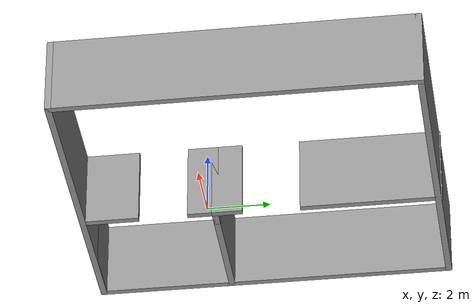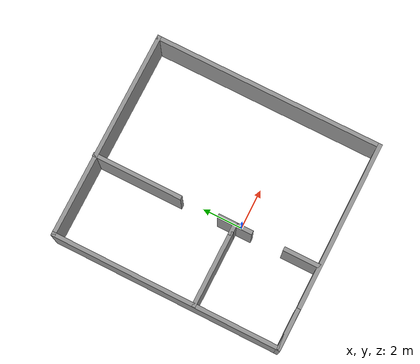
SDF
<?xml version='1.0'?>
<sdf version='1.4'>
  <model name='bedroom'>
    <link name='Wall_10'>
      <collision name='Wall_10_Collision'>
        <geometry>
          <box>
            <size>3.79938 0.2 2.5</size>
          </box>
        </geometry>
        <pose>0 0 1.25 0 -0 0</pose>
      </collision>
      <visual name='Wall_10_Visual'>
        <pose>0 0 1.25 0 -0 0</pose>
        <geometry>
          <box>
            <size>3.79938 0.2 2.5</size>
          </box>
        </geometry>
        <material>
          <script>
            <uri>file://media/materials/scripts/gazebo.material</uri>
            <name>Gazebo/Grey</name>
          </script>
        </material>
      </visual>
      <velocity_decay>
        <linear>0</linear>
        <angular>0</angular>
      </velocity_decay>
      <pose>-2.57757 0.196032 0 0 -0 0</pose>
    </link>
    <link name='Wall_11'>
      <collision name='Wall_11_Collision'>
        <geometry>
          <box>
            <size>0.661459 0.2 2.5</size>
          </box>
        </geometry>
        <pose>0 0 1.25 0 -0 0</pose>
      </collision>
      <visual name='Wall_11_Visual'>
        <pose>0 0 1.25 0 -0 0</pose>
        <geometry>
          <box>
            <size>0.661459 0.2 2.5</size>
          </box>
        </geometry>
        <material>
          <script>
            <uri>file://media/materials/scripts/gazebo.material</uri>
            <name>Gazebo/Grey</name>
          </script>
        </material>
      </visual>
      <velocity_decay>
        <linear>0</linear>
        <angular>0</angular>
      </velocity_decay>
      <pose>-0.547146 0.196032 0 0 -0 0</pose>
    </link>
    <link name='Wall_12'>
      <collision name='Wall_12_Collision'>
        <geometry>
          <box>
            <size>0.969098 0.2 2.5</size>
          </box>
        </geometry>
        <pose>0 0 1.25 0 -0 0</pose>
      </collision>
      <visual name='Wall_12_Visual'>
        <pose>0 0 1.25 0 -0 0</pose>
        <geometry>
          <box>
            <size>0.969098 0.2 2.5</size>
          </box>
        </geometry>
        <material>
          <script>
            <uri>file://media/materials/scripts/gazebo.material</uri>
            <name>Gazebo/Grey</name>
          </script>
        </material>
      </visual>
      <velocity_decay>
        <linear>0</linear>
        <angular>0</angular>
      </velocity_decay>
      <pose>-0.316416 -0.188517 0 0 0 -1.5708</pose>
    </link>
    <link name='Wall_14'>
      <collision name='Wall_14_Collision'>
        <geometry>
          <box>
            <size>1.89202 0.2 2.5</size>
          </box>
        </geometry>
        <pose>0 0 1.25 0 -0 0</pose>
      </collision>
      <visual name='Wall_14_Visual'>
        <pose>0 0 1.25 0 -0 0</pose>
        <geometry>
          <box>
            <size>1.89202 0.2 2.5</size>
          </box>
        </geometry>
        <material>
          <script>
            <uri>file://media/materials/scripts/gazebo.material</uri>
            <name>Gazebo/Grey</name>
          </script>
        </material>
      </visual>
      <velocity_decay>
        <linear>0</linear>
        <angular>0</angular>
      </velocity_decay>
      <pose>-0.316416 -3.17262 0 0 0 -1.5708</pose>
    </link>
    <link name='Wall_16'>
      <collision name='Wall_16_Collision'>
        <geometry>
          <box>
            <size>0.969098 0.2 2.5</size>
          </box>
        </geometry>
        <pose>0 0 1.25 0 -0 0</pose>
      </collision>
      <visual name='Wall_16_Visual'>
        <pose>0 0 1.25 0 -0 0</pose>
        <geometry>
          <box>
            <size>0.969098 0.2 2.5</size>
          </box>
        </geometry>
        <material>
          <script>
            <uri>file://media/materials/scripts/gazebo.material</uri>
            <name>Gazebo/Grey</name>
          </script>
        </material>
      </visual>
      <velocity_decay>
        <linear>0</linear>
        <angular>0</angular>
      </velocity_decay>
      <pose>-0.316416 0.580581 0 0 -0 1.5708</pose>
    </link>
    <link name='Wall_18'>
      <collision name='Wall_18_Collision'>
        <geometry>
          <box>
            <size>4.47619 0.2 2.5</size>
          </box>
        </geometry>
        <pose>0 0 1.25 0 -0 0</pose>
      </collision>
      <visual name='Wall_18_Visual'>
        <pose>0 0 1.25 0 -0 0</pose>
        <geometry>
          <box>
            <size>4.47619 0.2 2.5</size>
          </box>
        </geometry>
        <material>
          <script>
            <uri>file://media/materials/scripts/gazebo.material</uri>
            <name>Gazebo/Grey</name>
          </script>
        </material>
      </visual>
      <velocity_decay>
        <linear>0</linear>
        <angular>0</angular>
      </velocity_decay>
      <pose>-0.34718 5.13364 0 0 -0 1.5708</pose>
    </link>
    <link name='Wall_3'>
      <collision name='Wall_3_Collision'>
        <geometry>
          <box>
            <size>2.066 0.2 2.5</size>
          </box>
        </geometry>
        <pose>0 0 1.25 0 -0 0</pose>
      </collision>
      <visual name='Wall_3_Visual'>
        <pose>0 0 1.25 0 -0 0</pose>
        <geometry>
          <box>
            <size>2.066 0.2 2.5</size>
          </box>
        </geometry>
        <material>
          <script>
            <uri>file://media/materials/scripts/gazebo.material</uri>
            <name>Gazebo/Grey</name>
          </script>
        </material>
      </visual>
      <velocity_decay>
        <linear>0</linear>
        <angular>0</angular>
      </velocity_decay>
      <pose>-3.45643 -4.00415 0 0 -0 3.14159</pose>
    </link>
    <link name='Wall_4'>
      <collision name='Wall_4_Collision'>
        <geometry>
          <box>
            <size>11.441 0.2 2.5</size>
          </box>
        </geometry>
        <pose>0 0 1.25 0 -0 0</pose>
      </collision>
      <visual name='Wall_4_Visual'>
        <pose>0 0 1.25 0 -0 0</pose>
        <geometry>
          <box>
            <size>11.441 0.2 2.5</size>
          </box>
        </geometry>
        <material>
          <script>
            <uri>file://media/materials/scripts/gazebo.material</uri>
            <name>Gazebo/Grey</name>
          </script>
        </material>
      </visual>
      <velocity_decay>
        <linear>0</linear>
        <angular>0</angular>
      </velocity_decay>
      <pose>-4.38944 1.61637 0 0 -0 1.5708</pose>
    </link>
    <link name='Wall_5'>
      <collision name='Wall_5_Collision'>
        <geometry>
          <box>
            <size>10.4298 0.2 2.5</size>
          </box>
        </geometry>
        <pose>0 0 1.25 0 -0 0</pose>
      </collision>
      <visual name='Wall_5_Visual'>
        <pose>0 0 1.25 0 -0 0</pose>
        <geometry>
          <box>
            <size>10.4298 0.2 2.5</size>
          </box>
        </geometry>
        <material>
          <script>
            <uri>file://media/materials/scripts/gazebo.material</uri>
            <name>Gazebo/Grey</name>
          </script>
        </material>
      </visual>
      <velocity_decay>
        <linear>0</linear>
        <angular>0</angular>
      </velocity_decay>
      <pose>0.725442 7.23688 0 0 -0 0</pose>
    </link>
    <link name='Wall_6'>
      <collision name='Wall_6_Collision'>
        <geometry>
          <box>
            <size>11.4555 0.2 2.5</size>
          </box>
        </geometry>
        <pose>0 0 1.25 0 -0 0</pose>
      </collision>
      <visual name='Wall_6_Visual'>
        <pose>0 0 1.25 0 -0 0</pose>
        <geometry>
          <box>
            <size>11.4555 0.2 2.5</size>
          </box>
        </geometry>
        <material>
          <script>
            <uri>file://media/materials/scripts/gazebo.material</uri>
            <name>Gazebo/Grey</name>
          </script>
        </material>
      </visual>
      <velocity_decay>
        <linear>0</linear>
        <angular>0</angular>
      </velocity_decay>
      <pose>5.84032 1.60912 0 0 0 -1.5708</pose>
    </link>
    <link name='Wall_7'>
      <collision name='Wall_7_Collision'>
        <geometry>
          <box>
            <size>10.3868 0.2 2.5</size>
          </box>
        </geometry>
        <pose>0 0 1.25 0 -0 0</pose>
      </collision>
      <visual name='Wall_7_Visual'>
        <pose>0 0 1.25 0 -0 0</pose>
        <geometry>
          <box>
            <size>10.3868 0.2 2.5</size>
          </box>
        </geometry>
        <material>
          <script>
            <uri>file://media/materials/scripts/gazebo.material</uri>
            <name>Gazebo/Grey</name>
          </script>
        </material>
      </visual>
      <velocity_decay>
        <linear>0</linear>
        <angular>0</angular>
      </velocity_decay>
      <pose>0.746914 -4.01863 0 0 -0 3.14159</pose>
    </link>
    <static>1</static>
  </model>
</sdf>
